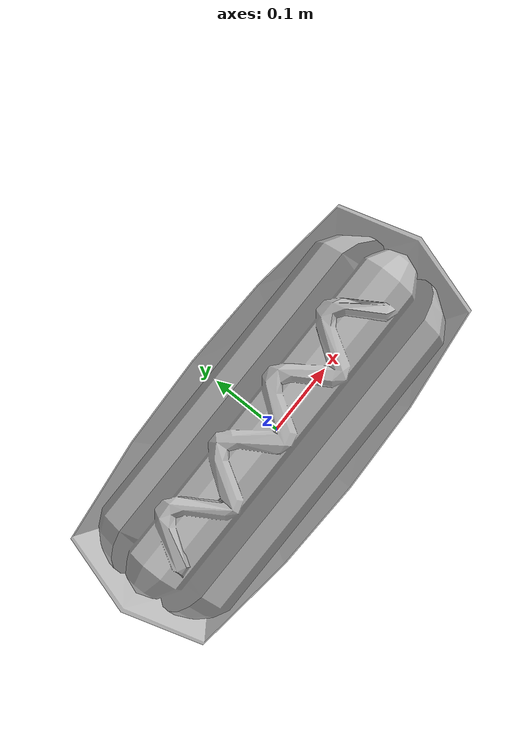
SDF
<?xml version='1.0'?>
<sdf version='1.6'>
  <model name='hotdog'>
    <link name='link_1'>
      <visual name='visual'>
        <pose frame=''>0 0 0 0 0 0</pose>
        <geometry>
          <mesh>
            <uri>model://hotdog/meshes/hotdog.dae</uri>
            <scale>1.0 1.0 1.0</scale>
          </mesh>
        </geometry>
        <cast_shadows>0</cast_shadows>
        <transparency>0</transparency>
      </visual>

    </link>

    <static>1</static>
    <allow_auto_disable>1</allow_auto_disable>
  </model>
</sdf>
